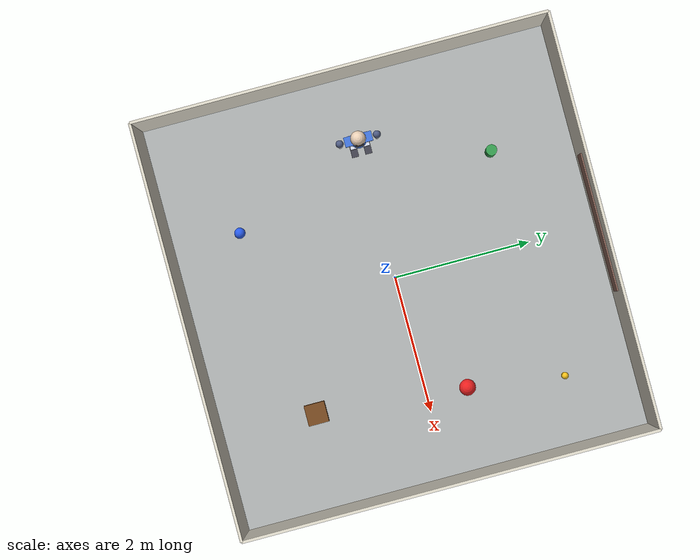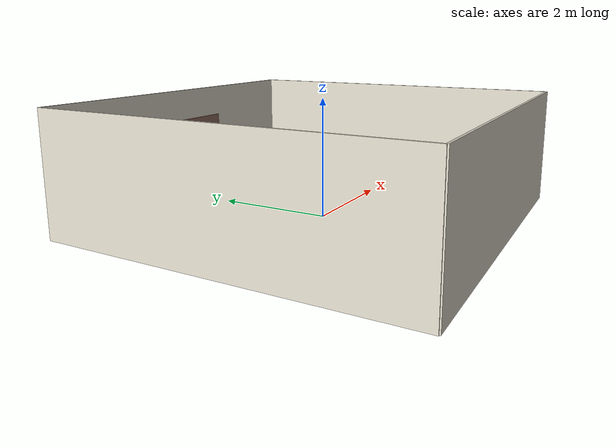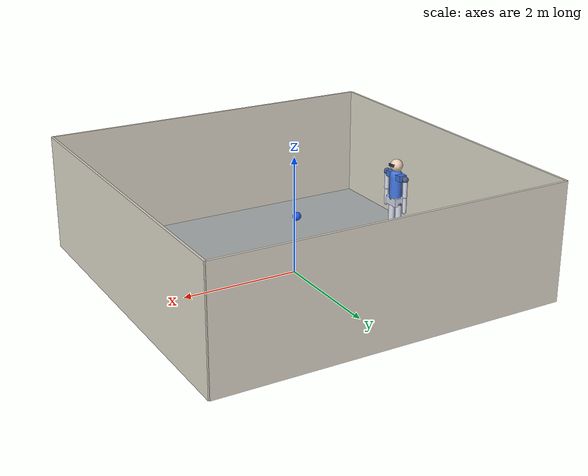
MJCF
<mujoco model="kornia_humanoid_room">
  <compiler angle="radian" autolimits="true"/>
  <option timestep="0.002"/>

  <asset>
    <texture name="floor" type="2d" builtin="checker" width="512" height="512" rgb1=".78 .78 .74" rgb2=".55 .58 .62" mark="edge" markrgb=".35 .35 .35"/>
    <material name="floor" texture="floor" texrepeat="12 12" texuniform="true" reflectance=".1"/>
    <texture name="wall" type="2d" builtin="flat" width="512" height="512" rgb1=".86 .84 .78" mark="random" random=".15" markrgb=".45 .42 .38"/>
    <material name="wall" texture="wall" texrepeat="8 2"/>
    <texture name="poster" type="2d" builtin="checker" width="256" height="256" rgb1=".95 .55 .15" rgb2=".15 .25 .55" mark="cross" markrgb="1 1 1"/>
    <material name="poster" texture="poster" texrepeat="3 2"/>
    <texture name="crate" type="2d" builtin="gradient" width="128" height="128" rgb1=".55 .35 .15" rgb2=".35 .2 .08" mark="edge" markrgb=".2 .1 0"/>
    <material name="crate" texture="crate" texrepeat="2 2"/>
  </asset>

  <default>
    <joint damping="4" armature=".1"/>
    <default class="body">
      <geom rgba=".82 .84 .9 1" contype="0" conaffinity="0"/>
    </default>
    <default class="joint">
      <geom type="sphere" size=".055" rgba=".3 .35 .5 1" contype="0" conaffinity="0"/>
    </default>
    <default class="wallgeom">
      <geom type="box" material="wall"/>
    </default>
  </default>

  <worldbody>
    <light pos="0 0 4" dir="0 0 -1" diffuse=".8 .8 .8" specular=".2 .2 .2" castshadow="true"/>
    <geom name="floor" type="plane" size="3 3 .05" material="floor"/>
    <geom name="wall_n" class="wallgeom" pos="0 3 1" size="3 .02 1"/>
    <geom name="wall_s" class="wallgeom" pos="0 -3 1" size="3 .02 1"/>
    <geom name="wall_e" class="wallgeom" pos="3 0 1" size=".02 3 1"/>
    <geom name="wall_w" class="wallgeom" pos="-3 0 1" size=".02 3 1"/>
    <geom name="poster" type="box" pos="0 2.96 1.1" size="1 .01 .35" material="poster"/>

    <body name="crate" pos="1.6 -1.6 .15"><geom type="box" size=".15 .15 .15" material="crate"/></body>
    <body name="pillar" pos="-1.4 1.8 .3"><geom type="cylinder" size=".08 .3" rgba=".2 .6 .3 1"/></body>
    <body name="cone" pos="2.0 2.0 .12"><geom type="capsule" size=".05 .08" rgba=".95 .75 .1 1"/></body>
    <body name="ball" pos="1.8 .6 .12"><freejoint/><geom name="ball" type="sphere" size=".12" rgba=".9 .12 .12 1" mass=".3"/></body>
    <body name="ball2" pos="-1.2 -2.0 .08"><freejoint/><geom type="sphere" size=".08" rgba=".15 .35 .9 1" mass=".2"/></body>

    <body name="pelvis" pos="-2 0 .9">
      <joint name="root_x" type="slide" axis="1 0 0" damping="0" armature="0"/>
      <joint name="root_y" type="slide" axis="0 1 0" damping="0" armature="0"/>
      <joint name="root_yaw" type="hinge" axis="0 0 1" damping="0" armature="0"/>
      <geom class="body" type="box" size=".1 .14 .07"/>
      <body name="thigh_l" pos="0 .1 -.05">
        <joint name="hip_l" axis="0 1 0" range="-1.2 1.2"/>
        <geom class="joint"/>
        <geom class="body" type="capsule" size=".055" fromto="0 0 0 0 0 -.4"/>
        <body name="shin_l" pos="0 0 -.4">
          <joint name="knee_l" axis="0 1 0" range="0 1.8"/>
          <geom class="joint" size=".045"/>
          <geom class="body" type="capsule" size=".045" fromto="0 0 0 0 0 -.4"/>
          <body name="foot_l" pos="0 0 -.4">
            <joint name="ankle_l" axis="0 1 0" range="-.8 .8"/>
            <geom class="body" type="box" pos=".05 0 -.02" size=".12 .05 .02" rgba=".25 .25 .3 1"/>
          </body>
        </body>
      </body>
      <body name="thigh_r" pos="0 -.1 -.05">
        <joint name="hip_r" axis="0 1 0" range="-1.2 1.2"/>
        <geom class="joint"/>
        <geom class="body" type="capsule" size=".055" fromto="0 0 0 0 0 -.4"/>
        <body name="shin_r" pos="0 0 -.4">
          <joint name="knee_r" axis="0 1 0" range="0 1.8"/>
          <geom class="joint" size=".045"/>
          <geom class="body" type="capsule" size=".045" fromto="0 0 0 0 0 -.4"/>
          <body name="foot_r" pos="0 0 -.4">
            <joint name="ankle_r" axis="0 1 0" range="-.8 .8"/>
            <geom class="body" type="box" pos=".05 0 -.02" size=".12 .05 .02" rgba=".25 .25 .3 1"/>
          </body>
        </body>
      </body>
      <body name="torso" pos="0 0 .07">
        <geom class="body" type="capsule" size=".11" fromto="0 0 0 0 0 .38" rgba=".25 .45 .85 1"/>
        <geom class="body" type="box" pos="0 0 .38" size=".07 .2 .05" rgba=".25 .45 .85 1"/>
        <body name="head" pos="0 0 .56">
          <geom class="body" type="sphere" size=".11" rgba=".9 .8 .7 1"/>
          <geom class="body" type="box" pos=".09 0 .02" size=".03 .06 .02" rgba=".1 .1 .12 1"/>
          <camera name="head" pos=".12 0 .02" xyaxes="0 -1 0 .5736 0 .8192" fovy="75"/>
        </body>
        <body name="uarm_l" pos="0 .27 .38">
          <joint name="shoulder_l" axis="0 1 0" range="-1.5 1.5"/>
          <geom class="joint"/>
          <geom class="body" type="capsule" size=".04" fromto="0 0 0 0 0 -.3"/>
          <body name="farm_l" pos="0 0 -.3">
            <joint name="elbow_l" axis="0 1 0" range="-2 0"/>
            <geom class="joint" size=".038"/>
            <geom class="body" type="capsule" size=".035" fromto="0 0 0 0 0 -.28"/>
          </body>
        </body>
        <body name="uarm_r" pos="0 -.27 .38">
          <joint name="shoulder_r" axis="0 1 0" range="-1.5 1.5"/>
          <geom class="joint"/>
          <geom class="body" type="capsule" size=".04" fromto="0 0 0 0 0 -.3"/>
          <body name="farm_r" pos="0 0 -.3">
            <joint name="elbow_r" axis="0 1 0" range="-2 0"/>
            <geom class="joint" size=".038"/>
            <geom class="body" type="capsule" size=".035" fromto="0 0 0 0 0 -.28"/>
          </body>
        </body>
      </body>
    </body>
  </worldbody>

  <actuator>
    <position name="hip_l" joint="hip_l" kp="200"/>
    <position name="knee_l" joint="knee_l" kp="200"/>
    <position name="ankle_l" joint="ankle_l" kp="60"/>
    <position name="hip_r" joint="hip_r" kp="200"/>
    <position name="knee_r" joint="knee_r" kp="200"/>
    <position name="ankle_r" joint="ankle_r" kp="60"/>
    <position name="shoulder_l" joint="shoulder_l" kp="80"/>
    <position name="elbow_l" joint="elbow_l" kp="40"/>
    <position name="shoulder_r" joint="shoulder_r" kp="80"/>
    <position name="elbow_r" joint="elbow_r" kp="40"/>
  </actuator>
</mujoco>
